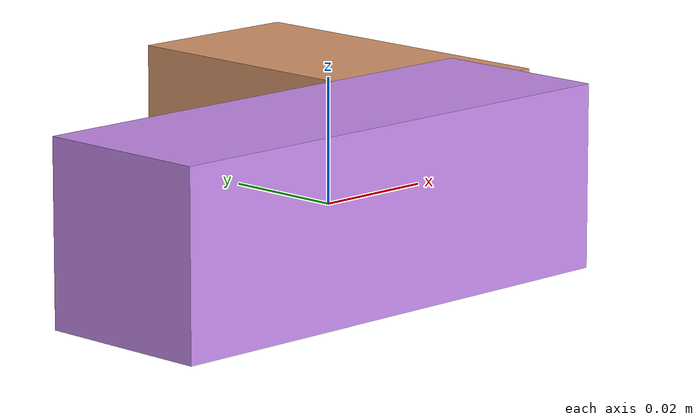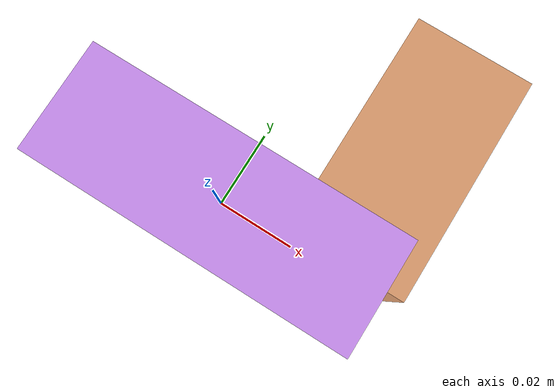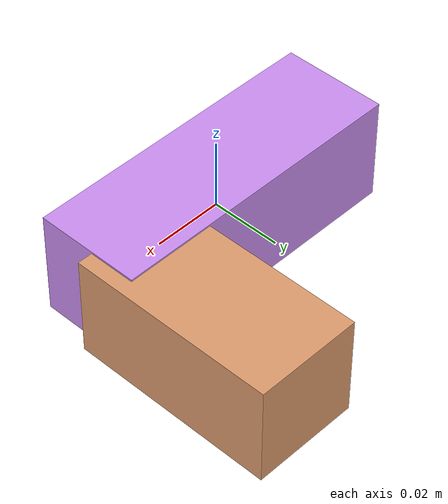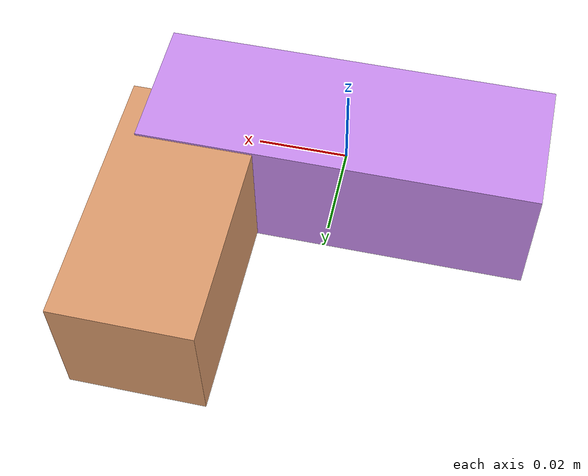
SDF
<sdf version="1.4"><world name="default"><model name="object0"><link name="link1"><pose>0 0 0 0 0 0</pose><inertial><pose>0 0 0 0 0 0</pose><mass>0.046836107854037336</mass><inertia><ixx>7.0254161781056e-06</ixx><ixy>0</ixy><iyy>3.2873896273799287e-05</iyy><ixz>0</ixz><iyz>0</iyz><izz>3.2873896273799287e-05</izz></inertia></inertial><visual name="link1_visual"><pose>0 0  0 0 0 0</pose><geometry><box><size>0.08673353306303211 0.03 0.03</size></box></geometry><material><diffuse>0.7970158059679122 0.5598985629157971 0.9482363210976714 1</diffuse></material></visual><collision><pose>0 0  0 0 0 0</pose><geometry><box><size>0.08673353306303211 0.03 0.03</size></box></geometry></collision></link><link name="link2"><pose>0.03262701349683337 0.030867410985609557 0 0 0 0</pose><inertial><pose>0 0 0 0 0 0</pose><mass>0.0314715058259639</mass><inertia><ixx>1.1113701784603196e-05</ixx><ixy>0</ixy><iyy>4.565990970250262e-06</iyy><ixz>0</ixz><iyz>0</iyz><izz>1.126843668824752e-05</izz></inertia></inertial><visual name="link2_visual"><pose>0 0  0 0 0 0</pose><geometry><box><size>0.03 0.05828056634437759 0.028999999999999998</size></box></geometry><material><diffuse>0.8705579750465062 0.6131761848001573 0.43054205753897257 1</diffuse></material></visual><collision><pose>0 0  0 0 0 0</pose><geometry><box><size>0.03 0.05828056634437759 0.028999999999999998</size></box></geometry></collision></link><joint name="link_joint_0" type="fixed"><parent>link1</parent><child>link2</child><pose>0 0 0 0 0 0</pose><axis><xyz>0 0 1</xyz></axis></joint></model></world></sdf>
